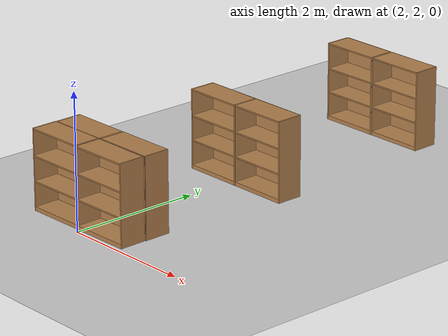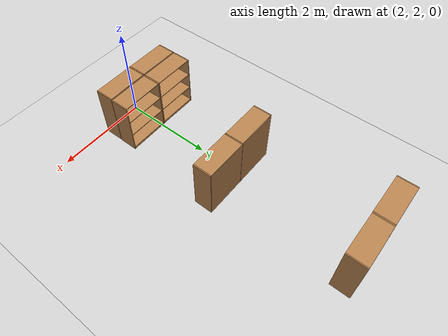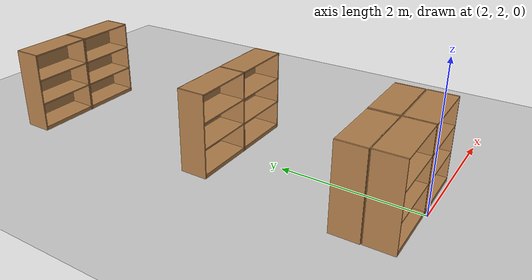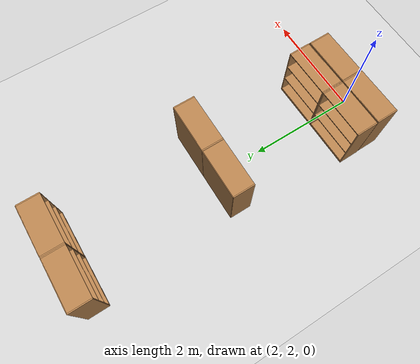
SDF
<sdf version="1.7">
 <world name="default">
  <scene><ambient>0.4 0.4 0.4 1</ambient><background>0.7 0.7 0.7 1</background><shadows>1</shadows></scene>
  <light name="sun" type="directional">
   <pose>0 0 10 0 -0 0</pose>
   <diffuse>0.8 0.8 0.8 1</diffuse>
   <specular>0.2 0.2 0.2 1</specular>
   <attenuation>
    <range>1000</range>
    <constant>0.9</constant>
    <linear>0.01</linear>
    <quadratic>0.001</quadratic>
   </attenuation>
   <direction>-0.5 0.1 -0.9</direction>
   <spot><inner_angle>0</inner_angle><outer_angle>0</outer_angle><falloff>0</falloff></spot>
  </light>
  <model name="ground_plane">
   <static>1</static>
   <link name="link">
    <collision name="collision">
     <geometry><plane><normal>0 0 1</normal><size>100 100</size></plane></geometry>
     <surface>
      <contact><collide_bitmask>65535</collide_bitmask></contact>
      <friction><ode><mu>100</mu><mu2>50</mu2></ode></friction>
     </surface>
    </collision>
    <visual name="visual">
     <cast_shadows>0</cast_shadows>
     <geometry><plane><normal>0 0 1</normal><size>100 100</size></plane></geometry>
     <material>
      <script><uri>file://media/materials/scripts/gazebo.material</uri><name>Gazebo/Grey</name></script>
     </material>
    </visual>
   </link>
  </model>
  <physics type="ode">
   <real_time_update_rate>1000</real_time_update_rate>
   <max_step_size>0.001</max_step_size>
   <real_time_factor>1</real_time_factor>
   <ode>
    <solver>
     <type>quick</type>
     <iters>150</iters>
     <precon_iters>0</precon_iters>
     <sor>1.4</sor>
     <use_dynamic_moi_rescaling>1</use_dynamic_moi_rescaling>
    </solver>
    <constraints>
     <cfm>1e-05</cfm>
     <erp>0.2</erp>
     <contact_max_correcting_vel>2000</contact_max_correcting_vel>
     <contact_surface_layer>0.01</contact_surface_layer>
    </constraints>
   </ode>
  </physics>
  <gravity>0 0 -9.8</gravity>
  <magnetic_field>6e-06 2.3e-05 -4.2e-05</magnetic_field>
  <atmosphere type="adiabatic"/>
  <spherical_coordinates>
   <surface_model>EARTH_WGS84</surface_model>
   <latitude_deg>0</latitude_deg>
   <longitude_deg>0</longitude_deg>
   <elevation>0</elevation>
   <heading_deg>0</heading_deg>
  </spherical_coordinates>
  <model name="bookshelf">
   <static>1</static>
   <link name="link">
    <inertial><mass>1</mass></inertial>
    <collision name="back">
     <pose>0 0.005 0.6 0 -0 0</pose>
     <geometry><box><size>0.9 0.01 1.2</size></box></geometry>
    </collision>
    <visual name="visual1">
     <pose>0 0.005 0.6 0 -0 0</pose>
     <geometry><box><size>0.9 0.01 1.2</size></box></geometry>
     <material>
      <script><uri>file://media/materials/scripts/gazebo.material</uri><name>Gazebo/Wood</name></script>
     </material>
    </visual>
    <collision name="left_side">
     <pose>0.45 -0.195 0.6 0 -0 0</pose>
     <geometry><box><size>0.02 0.4 1.2</size></box></geometry>
    </collision>
    <visual name="visual2">
     <pose>0.45 -0.195 0.6 0 -0 0</pose>
     <geometry><box><size>0.02 0.4 1.2</size></box></geometry>
     <material>
      <script><uri>file://media/materials/scripts/gazebo.material</uri><name>Gazebo/Wood</name></script>
     </material>
    </visual>
    <collision name="right_side">
     <pose>-0.45 -0.195 0.6 0 -0 0</pose>
     <geometry><box><size>0.02 0.4 1.2</size></box></geometry>
    </collision>
    <visual name="visual3">
     <pose>-0.45 -0.195 0.6 0 -0 0</pose>
     <geometry><box><size>0.02 0.4 1.2</size></box></geometry>
     <material>
      <script><uri>file://media/materials/scripts/gazebo.material</uri><name>Gazebo/Wood</name></script>
     </material>
    </visual>
    <collision name="bottom">
     <pose>0 -0.195 0.03 0 -0 0</pose>
     <geometry><box><size>0.88 0.4 0.06</size></box></geometry>
    </collision>
    <visual name="visual4">
     <pose>0 -0.195 0.03 0 -0 0</pose>
     <geometry><box><size>0.88 0.4 0.06</size></box></geometry>
     <material>
      <script><uri>file://media/materials/scripts/gazebo.material</uri><name>Gazebo/Wood</name></script>
     </material>
    </visual>
    <collision name="top">
     <pose>0 -0.195 1.19 0 -0 0</pose>
     <geometry><box><size>0.88 0.4 0.02</size></box></geometry>
    </collision>
    <visual name="visual5">
     <pose>0 -0.195 1.19 0 -0 0</pose>
     <geometry><box><size>0.88 0.4 0.02</size></box></geometry>
     <material>
      <script><uri>file://media/materials/scripts/gazebo.material</uri><name>Gazebo/Wood</name></script>
     </material>
    </visual>
    <collision name="low_shelf">
     <pose>0 -0.195 0.43 0 -0 0</pose>
     <geometry><box><size>0.88 0.4 0.02</size></box></geometry>
    </collision>
    <visual name="visual6">
     <pose>0 -0.195 0.43 0 -0 0</pose>
     <geometry><box><size>0.88 0.4 0.02</size></box></geometry>
     <material>
      <script><uri>file://media/materials/scripts/gazebo.material</uri><name>Gazebo/Wood</name></script>
     </material>
    </visual>
    <collision name="high_shelf">
     <pose>0 -0.195 0.8 0 -0 0</pose>
     <geometry><box><size>0.88 0.4 0.02</size></box></geometry>
    </collision>
    <visual name="visual7">
     <pose>0 -0.195 0.8 0 -0 0</pose>
     <geometry><box><size>0.88 0.4 0.02</size></box></geometry>
     <material>
      <script><uri>file://media/materials/scripts/gazebo.material</uri><name>Gazebo/Wood</name></script>
     </material>
    </visual>
   </link>
   <pose>1.49901 7.95195 0 0 -0 0</pose>
  </model>
  <model name="bookshelf_0">
   <static>1</static>
   <link name="link">
    <inertial><mass>1</mass></inertial>
    <collision name="back">
     <pose>0 0.005 0.6 0 -0 0</pose>
     <geometry><box><size>0.9 0.01 1.2</size></box></geometry>
    </collision>
    <visual name="visual1">
     <pose>0 0.005 0.6 0 -0 0</pose>
     <geometry><box><size>0.9 0.01 1.2</size></box></geometry>
     <material>
      <script><uri>file://media/materials/scripts/gazebo.material</uri><name>Gazebo/Wood</name></script>
     </material>
    </visual>
    <collision name="left_side">
     <pose>0.45 -0.195 0.6 0 -0 0</pose>
     <geometry><box><size>0.02 0.4 1.2</size></box></geometry>
    </collision>
    <visual name="visual2">
     <pose>0.45 -0.195 0.6 0 -0 0</pose>
     <geometry><box><size>0.02 0.4 1.2</size></box></geometry>
     <material>
      <script><uri>file://media/materials/scripts/gazebo.material</uri><name>Gazebo/Wood</name></script>
     </material>
    </visual>
    <collision name="right_side">
     <pose>-0.45 -0.195 0.6 0 -0 0</pose>
     <geometry><box><size>0.02 0.4 1.2</size></box></geometry>
    </collision>
    <visual name="visual3">
     <pose>-0.45 -0.195 0.6 0 -0 0</pose>
     <geometry><box><size>0.02 0.4 1.2</size></box></geometry>
     <material>
      <script><uri>file://media/materials/scripts/gazebo.material</uri><name>Gazebo/Wood</name></script>
     </material>
    </visual>
    <collision name="bottom">
     <pose>0 -0.195 0.03 0 -0 0</pose>
     <geometry><box><size>0.88 0.4 0.06</size></box></geometry>
    </collision>
    <visual name="visual4">
     <pose>0 -0.195 0.03 0 -0 0</pose>
     <geometry><box><size>0.88 0.4 0.06</size></box></geometry>
     <material>
      <script><uri>file://media/materials/scripts/gazebo.material</uri><name>Gazebo/Wood</name></script>
     </material>
    </visual>
    <collision name="top">
     <pose>0 -0.195 1.19 0 -0 0</pose>
     <geometry><box><size>0.88 0.4 0.02</size></box></geometry>
    </collision>
    <visual name="visual5">
     <pose>0 -0.195 1.19 0 -0 0</pose>
     <geometry><box><size>0.88 0.4 0.02</size></box></geometry>
     <material>
      <script><uri>file://media/materials/scripts/gazebo.material</uri><name>Gazebo/Wood</name></script>
     </material>
    </visual>
    <collision name="low_shelf">
     <pose>0 -0.195 0.43 0 -0 0</pose>
     <geometry><box><size>0.88 0.4 0.02</size></box></geometry>
    </collision>
    <visual name="visual6">
     <pose>0 -0.195 0.43 0 -0 0</pose>
     <geometry><box><size>0.88 0.4 0.02</size></box></geometry>
     <material>
      <script><uri>file://media/materials/scripts/gazebo.material</uri><name>Gazebo/Wood</name></script>
     </material>
    </visual>
    <collision name="high_shelf">
     <pose>0 -0.195 0.8 0 -0 0</pose>
     <geometry><box><size>0.88 0.4 0.02</size></box></geometry>
    </collision>
    <visual name="visual7">
     <pose>0 -0.195 0.8 0 -0 0</pose>
     <geometry><box><size>0.88 0.4 0.02</size></box></geometry>
     <material>
      <script><uri>file://media/materials/scripts/gazebo.material</uri><name>Gazebo/Wood</name></script>
     </material>
    </visual>
   </link>
   <pose>1.68519 5.09321 0 0 -0 0</pose>
  </model>
  <model name="bookshelf_1">
   <static>1</static>
   <link name="link">
    <inertial><mass>1</mass></inertial>
    <collision name="back">
     <pose>0 0.005 0.6 0 -0 0</pose>
     <geometry><box><size>0.9 0.01 1.2</size></box></geometry>
    </collision>
    <visual name="visual1">
     <pose>0 0.005 0.6 0 -0 0</pose>
     <geometry><box><size>0.9 0.01 1.2</size></box></geometry>
     <material>
      <script><uri>file://media/materials/scripts/gazebo.material</uri><name>Gazebo/Wood</name></script>
     </material>
    </visual>
    <collision name="left_side">
     <pose>0.45 -0.195 0.6 0 -0 0</pose>
     <geometry><box><size>0.02 0.4 1.2</size></box></geometry>
    </collision>
    <visual name="visual2">
     <pose>0.45 -0.195 0.6 0 -0 0</pose>
     <geometry><box><size>0.02 0.4 1.2</size></box></geometry>
     <material>
      <script><uri>file://media/materials/scripts/gazebo.material</uri><name>Gazebo/Wood</name></script>
     </material>
    </visual>
    <collision name="right_side">
     <pose>-0.45 -0.195 0.6 0 -0 0</pose>
     <geometry><box><size>0.02 0.4 1.2</size></box></geometry>
    </collision>
    <visual name="visual3">
     <pose>-0.45 -0.195 0.6 0 -0 0</pose>
     <geometry><box><size>0.02 0.4 1.2</size></box></geometry>
     <material>
      <script><uri>file://media/materials/scripts/gazebo.material</uri><name>Gazebo/Wood</name></script>
     </material>
    </visual>
    <collision name="bottom">
     <pose>0 -0.195 0.03 0 -0 0</pose>
     <geometry><box><size>0.88 0.4 0.06</size></box></geometry>
    </collision>
    <visual name="visual4">
     <pose>0 -0.195 0.03 0 -0 0</pose>
     <geometry><box><size>0.88 0.4 0.06</size></box></geometry>
     <material>
      <script><uri>file://media/materials/scripts/gazebo.material</uri><name>Gazebo/Wood</name></script>
     </material>
    </visual>
    <collision name="top">
     <pose>0 -0.195 1.19 0 -0 0</pose>
     <geometry><box><size>0.88 0.4 0.02</size></box></geometry>
    </collision>
    <visual name="visual5">
     <pose>0 -0.195 1.19 0 -0 0</pose>
     <geometry><box><size>0.88 0.4 0.02</size></box></geometry>
     <material>
      <script><uri>file://media/materials/scripts/gazebo.material</uri><name>Gazebo/Wood</name></script>
     </material>
    </visual>
    <collision name="low_shelf">
     <pose>0 -0.195 0.43 0 -0 0</pose>
     <geometry><box><size>0.88 0.4 0.02</size></box></geometry>
    </collision>
    <visual name="visual6">
     <pose>0 -0.195 0.43 0 -0 0</pose>
     <geometry><box><size>0.88 0.4 0.02</size></box></geometry>
     <material>
      <script><uri>file://media/materials/scripts/gazebo.material</uri><name>Gazebo/Wood</name></script>
     </material>
    </visual>
    <collision name="high_shelf">
     <pose>0 -0.195 0.8 0 -0 0</pose>
     <geometry><box><size>0.88 0.4 0.02</size></box></geometry>
    </collision>
    <visual name="visual7">
     <pose>0 -0.195 0.8 0 -0 0</pose>
     <geometry><box><size>0.88 0.4 0.02</size></box></geometry>
     <material>
      <script><uri>file://media/materials/scripts/gazebo.material</uri><name>Gazebo/Wood</name></script>
     </material>
    </visual>
   </link>
   <pose>1.50005 2.42058 0.023142 0 -0 0.010807</pose>
  </model>
  <model name="bookshelf_2">
   <static>1</static>
   <link name="link">
    <inertial><mass>1</mass></inertial>
    <collision name="back">
     <pose>0 0.005 0.6 0 -0 0</pose>
     <geometry><box><size>0.9 0.01 1.2</size></box></geometry>
    </collision>
    <visual name="visual1">
     <pose>0 0.005 0.6 0 -0 0</pose>
     <geometry><box><size>0.9 0.01 1.2</size></box></geometry>
     <material>
      <script><uri>file://media/materials/scripts/gazebo.material</uri><name>Gazebo/Wood</name></script>
     </material>
    </visual>
    <collision name="left_side">
     <pose>0.45 -0.195 0.6 0 -0 0</pose>
     <geometry><box><size>0.02 0.4 1.2</size></box></geometry>
    </collision>
    <visual name="visual2">
     <pose>0.45 -0.195 0.6 0 -0 0</pose>
     <geometry><box><size>0.02 0.4 1.2</size></box></geometry>
     <material>
      <script><uri>file://media/materials/scripts/gazebo.material</uri><name>Gazebo/Wood</name></script>
     </material>
    </visual>
    <collision name="right_side">
     <pose>-0.45 -0.195 0.6 0 -0 0</pose>
     <geometry><box><size>0.02 0.4 1.2</size></box></geometry>
    </collision>
    <visual name="visual3">
     <pose>-0.45 -0.195 0.6 0 -0 0</pose>
     <geometry><box><size>0.02 0.4 1.2</size></box></geometry>
     <material>
      <script><uri>file://media/materials/scripts/gazebo.material</uri><name>Gazebo/Wood</name></script>
     </material>
    </visual>
    <collision name="bottom">
     <pose>0 -0.195 0.03 0 -0 0</pose>
     <geometry><box><size>0.88 0.4 0.06</size></box></geometry>
    </collision>
    <visual name="visual4">
     <pose>0 -0.195 0.03 0 -0 0</pose>
     <geometry><box><size>0.88 0.4 0.06</size></box></geometry>
     <material>
      <script><uri>file://media/materials/scripts/gazebo.material</uri><name>Gazebo/Wood</name></script>
     </material>
    </visual>
    <collision name="top">
     <pose>0 -0.195 1.19 0 -0 0</pose>
     <geometry><box><size>0.88 0.4 0.02</size></box></geometry>
    </collision>
    <visual name="visual5">
     <pose>0 -0.195 1.19 0 -0 0</pose>
     <geometry><box><size>0.88 0.4 0.02</size></box></geometry>
     <material>
      <script><uri>file://media/materials/scripts/gazebo.material</uri><name>Gazebo/Wood</name></script>
     </material>
    </visual>
    <collision name="low_shelf">
     <pose>0 -0.195 0.43 0 -0 0</pose>
     <geometry><box><size>0.88 0.4 0.02</size></box></geometry>
    </collision>
    <visual name="visual6">
     <pose>0 -0.195 0.43 0 -0 0</pose>
     <geometry><box><size>0.88 0.4 0.02</size></box></geometry>
     <material>
      <script><uri>file://media/materials/scripts/gazebo.material</uri><name>Gazebo/Wood</name></script>
     </material>
    </visual>
    <collision name="high_shelf">
     <pose>0 -0.195 0.8 0 -0 0</pose>
     <geometry><box><size>0.88 0.4 0.02</size></box></geometry>
    </collision>
    <visual name="visual7">
     <pose>0 -0.195 0.8 0 -0 0</pose>
     <geometry><box><size>0.88 0.4 0.02</size></box></geometry>
     <material>
      <script><uri>file://media/materials/scripts/gazebo.material</uri><name>Gazebo/Wood</name></script>
     </material>
    </visual>
   </link>
   <pose>2.41831 7.95278 0 0 -0 0</pose>
  </model>
  <model name="bookshelf_3">
   <static>1</static>
   <link name="link">
    <inertial><mass>1</mass></inertial>
    <collision name="back">
     <pose>0 0.005 0.6 0 -0 0</pose>
     <geometry><box><size>0.9 0.01 1.2</size></box></geometry>
    </collision>
    <visual name="visual1">
     <pose>0 0.005 0.6 0 -0 0</pose>
     <geometry><box><size>0.9 0.01 1.2</size></box></geometry>
     <material>
      <script><uri>file://media/materials/scripts/gazebo.material</uri><name>Gazebo/Wood</name></script>
     </material>
    </visual>
    <collision name="left_side">
     <pose>0.45 -0.195 0.6 0 -0 0</pose>
     <geometry><box><size>0.02 0.4 1.2</size></box></geometry>
    </collision>
    <visual name="visual2">
     <pose>0.45 -0.195 0.6 0 -0 0</pose>
     <geometry><box><size>0.02 0.4 1.2</size></box></geometry>
     <material>
      <script><uri>file://media/materials/scripts/gazebo.material</uri><name>Gazebo/Wood</name></script>
     </material>
    </visual>
    <collision name="right_side">
     <pose>-0.45 -0.195 0.6 0 -0 0</pose>
     <geometry><box><size>0.02 0.4 1.2</size></box></geometry>
    </collision>
    <visual name="visual3">
     <pose>-0.45 -0.195 0.6 0 -0 0</pose>
     <geometry><box><size>0.02 0.4 1.2</size></box></geometry>
     <material>
      <script><uri>file://media/materials/scripts/gazebo.material</uri><name>Gazebo/Wood</name></script>
     </material>
    </visual>
    <collision name="bottom">
     <pose>0 -0.195 0.03 0 -0 0</pose>
     <geometry><box><size>0.88 0.4 0.06</size></box></geometry>
    </collision>
    <visual name="visual4">
     <pose>0 -0.195 0.03 0 -0 0</pose>
     <geometry><box><size>0.88 0.4 0.06</size></box></geometry>
     <material>
      <script><uri>file://media/materials/scripts/gazebo.material</uri><name>Gazebo/Wood</name></script>
     </material>
    </visual>
    <collision name="top">
     <pose>0 -0.195 1.19 0 -0 0</pose>
     <geometry><box><size>0.88 0.4 0.02</size></box></geometry>
    </collision>
    <visual name="visual5">
     <pose>0 -0.195 1.19 0 -0 0</pose>
     <geometry><box><size>0.88 0.4 0.02</size></box></geometry>
     <material>
      <script><uri>file://media/materials/scripts/gazebo.material</uri><name>Gazebo/Wood</name></script>
     </material>
    </visual>
    <collision name="low_shelf">
     <pose>0 -0.195 0.43 0 -0 0</pose>
     <geometry><box><size>0.88 0.4 0.02</size></box></geometry>
    </collision>
    <visual name="visual6">
     <pose>0 -0.195 0.43 0 -0 0</pose>
     <geometry><box><size>0.88 0.4 0.02</size></box></geometry>
     <material>
      <script><uri>file://media/materials/scripts/gazebo.material</uri><name>Gazebo/Wood</name></script>
     </material>
    </visual>
    <collision name="high_shelf">
     <pose>0 -0.195 0.8 0 -0 0</pose>
     <geometry><box><size>0.88 0.4 0.02</size></box></geometry>
    </collision>
    <visual name="visual7">
     <pose>0 -0.195 0.8 0 -0 0</pose>
     <geometry><box><size>0.88 0.4 0.02</size></box></geometry>
     <material>
      <script><uri>file://media/materials/scripts/gazebo.material</uri><name>Gazebo/Wood</name></script>
     </material>
    </visual>
   </link>
   <pose>2.59408 5.09356 0 0 -0 0</pose>
  </model>
  <model name="bookshelf_4">
   <static>1</static>
   <link name="link">
    <inertial><mass>1</mass></inertial>
    <collision name="back">
     <pose>0 0.005 0.6 0 -0 0</pose>
     <geometry><box><size>0.9 0.01 1.2</size></box></geometry>
    </collision>
    <visual name="visual1">
     <pose>0 0.005 0.6 0 -0 0</pose>
     <geometry><box><size>0.9 0.01 1.2</size></box></geometry>
     <material>
      <script><uri>file://media/materials/scripts/gazebo.material</uri><name>Gazebo/Wood</name></script>
     </material>
    </visual>
    <collision name="left_side">
     <pose>0.45 -0.195 0.6 0 -0 0</pose>
     <geometry><box><size>0.02 0.4 1.2</size></box></geometry>
    </collision>
    <visual name="visual2">
     <pose>0.45 -0.195 0.6 0 -0 0</pose>
     <geometry><box><size>0.02 0.4 1.2</size></box></geometry>
     <material>
      <script><uri>file://media/materials/scripts/gazebo.material</uri><name>Gazebo/Wood</name></script>
     </material>
    </visual>
    <collision name="right_side">
     <pose>-0.45 -0.195 0.6 0 -0 0</pose>
     <geometry><box><size>0.02 0.4 1.2</size></box></geometry>
    </collision>
    <visual name="visual3">
     <pose>-0.45 -0.195 0.6 0 -0 0</pose>
     <geometry><box><size>0.02 0.4 1.2</size></box></geometry>
     <material>
      <script><uri>file://media/materials/scripts/gazebo.material</uri><name>Gazebo/Wood</name></script>
     </material>
    </visual>
    <collision name="bottom">
     <pose>0 -0.195 0.03 0 -0 0</pose>
     <geometry><box><size>0.88 0.4 0.06</size></box></geometry>
    </collision>
    <visual name="visual4">
     <pose>0 -0.195 0.03 0 -0 0</pose>
     <geometry><box><size>0.88 0.4 0.06</size></box></geometry>
     <material>
      <script><uri>file://media/materials/scripts/gazebo.material</uri><name>Gazebo/Wood</name></script>
     </material>
    </visual>
    <collision name="top">
     <pose>0 -0.195 1.19 0 -0 0</pose>
     <geometry><box><size>0.88 0.4 0.02</size></box></geometry>
    </collision>
    <visual name="visual5">
     <pose>0 -0.195 1.19 0 -0 0</pose>
     <geometry><box><size>0.88 0.4 0.02</size></box></geometry>
     <material>
      <script><uri>file://media/materials/scripts/gazebo.material</uri><name>Gazebo/Wood</name></script>
     </material>
    </visual>
    <collision name="low_shelf">
     <pose>0 -0.195 0.43 0 -0 0</pose>
     <geometry><box><size>0.88 0.4 0.02</size></box></geometry>
    </collision>
    <visual name="visual6">
     <pose>0 -0.195 0.43 0 -0 0</pose>
     <geometry><box><size>0.88 0.4 0.02</size></box></geometry>
     <material>
      <script><uri>file://media/materials/scripts/gazebo.material</uri><name>Gazebo/Wood</name></script>
     </material>
    </visual>
    <collision name="high_shelf">
     <pose>0 -0.195 0.8 0 -0 0</pose>
     <geometry><box><size>0.88 0.4 0.02</size></box></geometry>
    </collision>
    <visual name="visual7">
     <pose>0 -0.195 0.8 0 -0 0</pose>
     <geometry><box><size>0.88 0.4 0.02</size></box></geometry>
     <material>
      <script><uri>file://media/materials/scripts/gazebo.material</uri><name>Gazebo/Wood</name></script>
     </material>
    </visual>
   </link>
   <pose>2.41233 2.43037 0.020934 0 -0 0.013493</pose>
  </model>
  <model name="bookshelf_5">
   <static>1</static>
   <link name="link">
    <inertial><mass>1</mass></inertial>
    <collision name="back">
     <pose>0 0.005 0.6 0 -0 0</pose>
     <geometry><box><size>0.9 0.01 1.2</size></box></geometry>
    </collision>
    <visual name="visual1">
     <pose>0 0.005 0.6 0 -0 0</pose>
     <geometry><box><size>0.9 0.01 1.2</size></box></geometry>
     <material>
      <script><uri>file://media/materials/scripts/gazebo.material</uri><name>Gazebo/Wood</name></script>
     </material>
    </visual>
    <collision name="left_side">
     <pose>0.45 -0.195 0.6 0 -0 0</pose>
     <geometry><box><size>0.02 0.4 1.2</size></box></geometry>
    </collision>
    <visual name="visual2">
     <pose>0.45 -0.195 0.6 0 -0 0</pose>
     <geometry><box><size>0.02 0.4 1.2</size></box></geometry>
     <material>
      <script><uri>file://media/materials/scripts/gazebo.material</uri><name>Gazebo/Wood</name></script>
     </material>
    </visual>
    <collision name="right_side">
     <pose>-0.45 -0.195 0.6 0 -0 0</pose>
     <geometry><box><size>0.02 0.4 1.2</size></box></geometry>
    </collision>
    <visual name="visual3">
     <pose>-0.45 -0.195 0.6 0 -0 0</pose>
     <geometry><box><size>0.02 0.4 1.2</size></box></geometry>
     <material>
      <script><uri>file://media/materials/scripts/gazebo.material</uri><name>Gazebo/Wood</name></script>
     </material>
    </visual>
    <collision name="bottom">
     <pose>0 -0.195 0.03 0 -0 0</pose>
     <geometry><box><size>0.88 0.4 0.06</size></box></geometry>
    </collision>
    <visual name="visual4">
     <pose>0 -0.195 0.03 0 -0 0</pose>
     <geometry><box><size>0.88 0.4 0.06</size></box></geometry>
     <material>
      <script><uri>file://media/materials/scripts/gazebo.material</uri><name>Gazebo/Wood</name></script>
     </material>
    </visual>
    <collision name="top">
     <pose>0 -0.195 1.19 0 -0 0</pose>
     <geometry><box><size>0.88 0.4 0.02</size></box></geometry>
    </collision>
    <visual name="visual5">
     <pose>0 -0.195 1.19 0 -0 0</pose>
     <geometry><box><size>0.88 0.4 0.02</size></box></geometry>
     <material>
      <script><uri>file://media/materials/scripts/gazebo.material</uri><name>Gazebo/Wood</name></script>
     </material>
    </visual>
    <collision name="low_shelf">
     <pose>0 -0.195 0.43 0 -0 0</pose>
     <geometry><box><size>0.88 0.4 0.02</size></box></geometry>
    </collision>
    <visual name="visual6">
     <pose>0 -0.195 0.43 0 -0 0</pose>
     <geometry><box><size>0.88 0.4 0.02</size></box></geometry>
     <material>
      <script><uri>file://media/materials/scripts/gazebo.material</uri><name>Gazebo/Wood</name></script>
     </material>
    </visual>
    <collision name="high_shelf">
     <pose>0 -0.195 0.8 0 -0 0</pose>
     <geometry><box><size>0.88 0.4 0.02</size></box></geometry>
    </collision>
    <visual name="visual7">
     <pose>0 -0.195 0.8 0 -0 0</pose>
     <geometry><box><size>0.88 0.4 0.02</size></box></geometry>
     <material>
      <script><uri>file://media/materials/scripts/gazebo.material</uri><name>Gazebo/Wood</name></script>
     </material>
    </visual>
   </link>
   <pose>1.4959 2.4507 0.017189 0 -0 -3.13334</pose>
  </model>
  <model name="bookshelf_9">
   <static>1</static>
   <link name="link">
    <inertial><mass>1</mass></inertial>
    <collision name="back">
     <pose>0 0.005 0.6 0 -0 0</pose>
     <geometry><box><size>0.9 0.01 1.2</size></box></geometry>
    </collision>
    <visual name="visual1">
     <pose>0 0.005 0.6 0 -0 0</pose>
     <geometry><box><size>0.9 0.01 1.2</size></box></geometry>
     <material>
      <script><uri>file://media/materials/scripts/gazebo.material</uri><name>Gazebo/Wood</name></script>
     </material>
    </visual>
    <collision name="left_side">
     <pose>0.45 -0.195 0.6 0 -0 0</pose>
     <geometry><box><size>0.02 0.4 1.2</size></box></geometry>
    </collision>
    <visual name="visual2">
     <pose>0.45 -0.195 0.6 0 -0 0</pose>
     <geometry><box><size>0.02 0.4 1.2</size></box></geometry>
     <material>
      <script><uri>file://media/materials/scripts/gazebo.material</uri><name>Gazebo/Wood</name></script>
     </material>
    </visual>
    <collision name="right_side">
     <pose>-0.45 -0.195 0.6 0 -0 0</pose>
     <geometry><box><size>0.02 0.4 1.2</size></box></geometry>
    </collision>
    <visual name="visual3">
     <pose>-0.45 -0.195 0.6 0 -0 0</pose>
     <geometry><box><size>0.02 0.4 1.2</size></box></geometry>
     <material>
      <script><uri>file://media/materials/scripts/gazebo.material</uri><name>Gazebo/Wood</name></script>
     </material>
    </visual>
    <collision name="bottom">
     <pose>0 -0.195 0.03 0 -0 0</pose>
     <geometry><box><size>0.88 0.4 0.06</size></box></geometry>
    </collision>
    <visual name="visual4">
     <pose>0 -0.195 0.03 0 -0 0</pose>
     <geometry><box><size>0.88 0.4 0.06</size></box></geometry>
     <material>
      <script><uri>file://media/materials/scripts/gazebo.material</uri><name>Gazebo/Wood</name></script>
     </material>
    </visual>
    <collision name="top">
     <pose>0 -0.195 1.19 0 -0 0</pose>
     <geometry><box><size>0.88 0.4 0.02</size></box></geometry>
    </collision>
    <visual name="visual5">
     <pose>0 -0.195 1.19 0 -0 0</pose>
     <geometry><box><size>0.88 0.4 0.02</size></box></geometry>
     <material>
      <script><uri>file://media/materials/scripts/gazebo.material</uri><name>Gazebo/Wood</name></script>
     </material>
    </visual>
    <collision name="low_shelf">
     <pose>0 -0.195 0.43 0 -0 0</pose>
     <geometry><box><size>0.88 0.4 0.02</size></box></geometry>
    </collision>
    <visual name="visual6">
     <pose>0 -0.195 0.43 0 -0 0</pose>
     <geometry><box><size>0.88 0.4 0.02</size></box></geometry>
     <material>
      <script><uri>file://media/materials/scripts/gazebo.material</uri><name>Gazebo/Wood</name></script>
     </material>
    </visual>
    <collision name="high_shelf">
     <pose>0 -0.195 0.8 0 -0 0</pose>
     <geometry><box><size>0.88 0.4 0.02</size></box></geometry>
    </collision>
    <visual name="visual7">
     <pose>0 -0.195 0.8 0 -0 0</pose>
     <geometry><box><size>0.88 0.4 0.02</size></box></geometry>
     <material>
      <script><uri>file://media/materials/scripts/gazebo.material</uri><name>Gazebo/Wood</name></script>
     </material>
    </visual>
   </link>
   <pose>2.41771 2.46353 0.017275 0 -0 -3.12786</pose>
  </model>
 </world>
</sdf>
